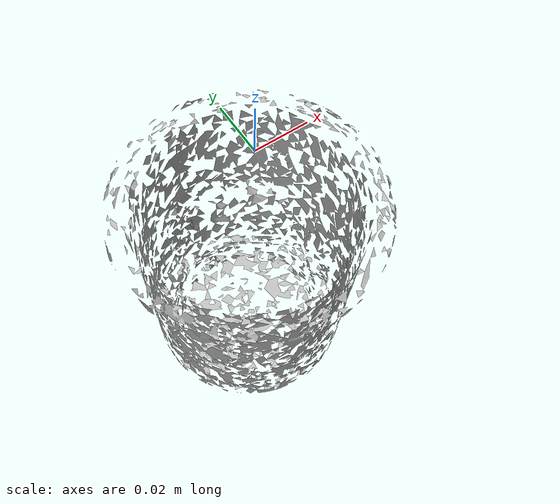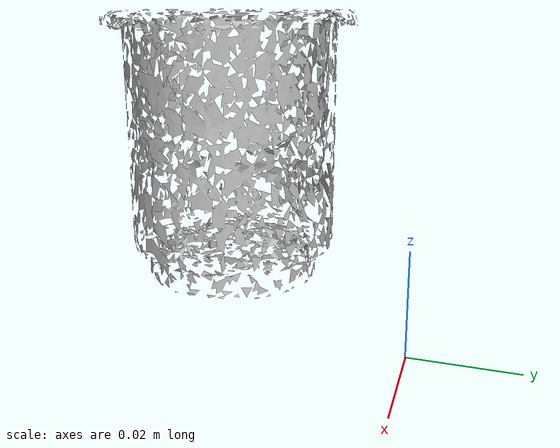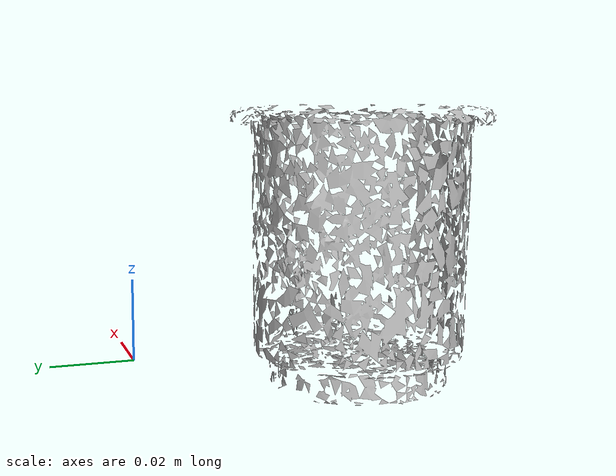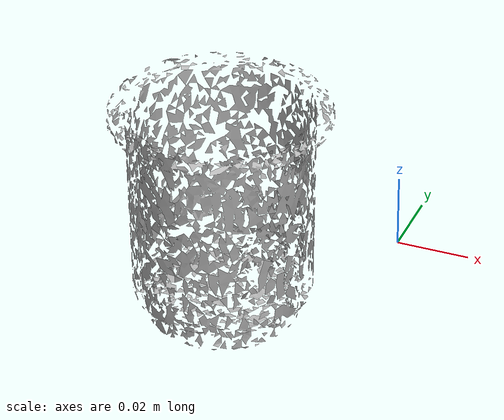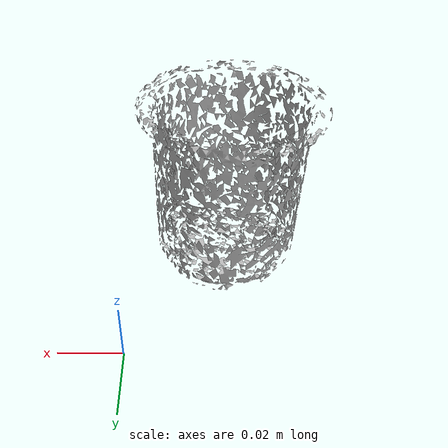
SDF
<?xml version='1.0'?>
<sdf version="1.4">
  <model name="a_cups">
    <static>false</static>
    <link name="link">
      <inertial>
        <pose>-0.03054243478832419 -0.04266839741228885 0.028457527482021325 2.867262452880077 -0.016099482029779847 2.712759376003069</pose>
        <mass>2.3348454346731825e-05</mass>
        <inertia>
          <ixx>1.2955274196391764e-08</ixx>
          <ixy>-9.06163989605389e-25</ixy>
          <ixz>6.459677281798367e-25</ixz>
          <iyy>1.2835382668906959e-08</iyy>
          <iyz>4.526604870428734e-25</iyz>
          <izz>1.069868811139832e-08</izz>
        </inertia>
      </inertial>
      <collision name="collision">
        <geometry>
          <mesh>
            <!-- Use a downsampled mesh for collisions -->
            <uri>model://065-a_cups/downsampled.obj</uri>
	        </mesh>
        </geometry>
        <surface>
      </surface>
      </collision>
      <visual name="visual">
        <geometry>
          <mesh>
            <uri>model://065-a_cups/google_16k/textured.obj</uri>
	        </mesh>
        </geometry>
        <material>
          <script>
            <uri>model://065-a_cups/a_cups.material</uri>
            <name>a_cups</name>
          </script>
        </material>
      </visual>
    </link>
  </model>
</sdf>
